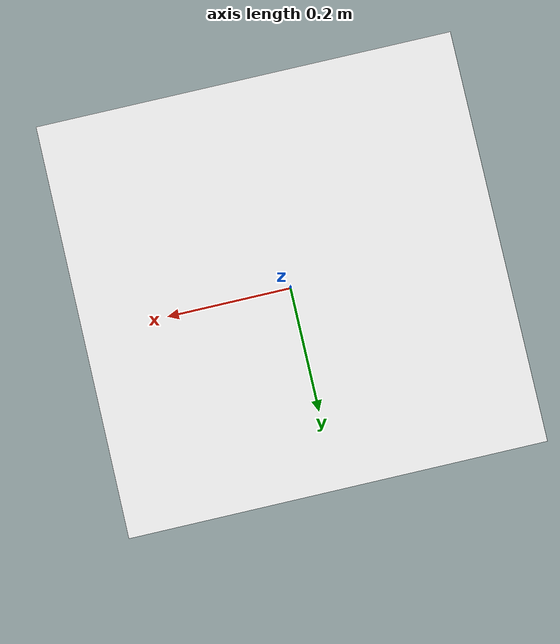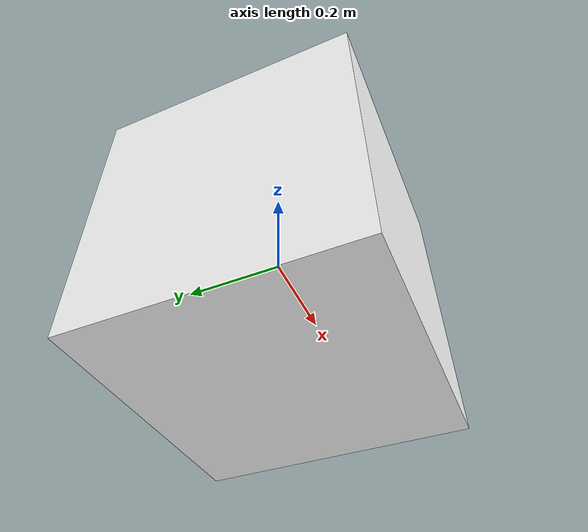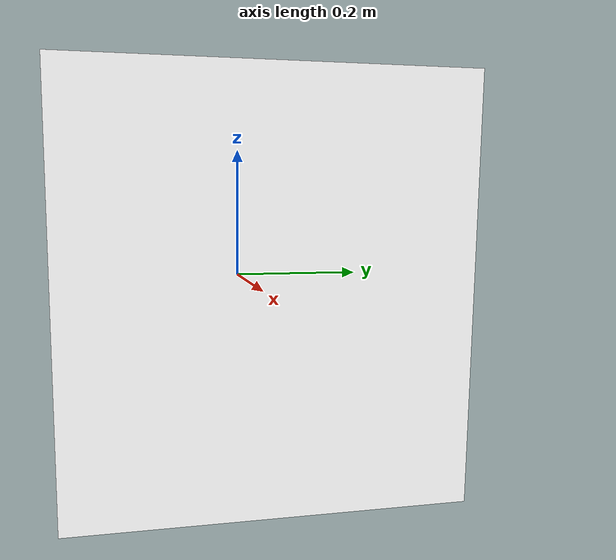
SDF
<?xml version='1.0'?>
<sdf version='1.6'>
  <model name='at0_2'>
    <link name='link'>
      <pose frame=''>0 0 0 0 -0 0</pose>
      <inertial>
        <mass>10.0</mass>
        <inertia>
          <ixx>4e-05</ixx>
          <ixy>0</ixy>
          <ixz>0</ixz>
          <iyy>4e-05</iyy>
          <iyz>0</iyz>
          <izz>4e-05</izz>
        </inertia>
        <pose frame=''>0 0 0 0 -0 0</pose>
      </inertial>
      <self_collide>0</self_collide>
      <kinematic>0</kinematic>
      <gravity>1</gravity>
      <visual name='visual'>
        <geometry>
          <box>
            <size>0.5 0.5 0.5</size>
          </box>
        </geometry>
        <material>
          <script>
            <uri>model://at0/materials/scripts</uri>
            <uri>model://at0/materials/textures</uri>
            <name>at0/Diffuse</name>
          </script>
          <ambient>1 1 1 1</ambient>
          <diffuse>1 1 1 1</diffuse>
          <specular>0 0 0 1</specular>
          <emissive>0 0 0 1</emissive>
          <shader type='vertex'>
            <normal_map>__default__</normal_map>
          </shader>
        </material>
        <pose frame=''>0 0 0 0 -0 0</pose>
        <cast_shadows>1</cast_shadows>
        <transparency>0</transparency>
      </visual>
      <visual name='ModelPreview_8::link::visual_2'>
        <geometry>
          <box>
            <size>0.528063 0.520416 0.556558</size>
          </box>
        </geometry>
        <material>
          <script>
            <uri>model://at0/materials/scripts</uri>
            <uri>model://at0/materials/textures</uri>
            <name>at0/Diffuse</name>
          </script>
          <ambient>1 1 1 1</ambient>
          <diffuse>1 1 1 1</diffuse>
          <specular>0 0 0 1</specular>
          <emissive>0 0 0 1</emissive>
          <shader type='vertex'>
            <normal_map>__default__</normal_map>
          </shader>
        </material>
        <pose frame=''>0 0 0 0 -0 0</pose>
        <cast_shadows>1</cast_shadows>
        <transparency>0</transparency>
      </visual>
      <visual name='ModelPreview_8::link::visual_3'>
        <geometry>
          <box>
            <size>0.528063 0.520416 0.556558</size>
          </box>
        </geometry>
        <material>
          <script>
            <uri>model://at0/materials/scripts</uri>
            <uri>model://at0/materials/textures</uri>
            <name>at0/Diffuse</name>
          </script>
          <ambient>1 1 1 1</ambient>
          <diffuse>1 1 1 1</diffuse>
          <specular>0 0 0 1</specular>
          <emissive>0 0 0 1</emissive>
          <shader type='vertex'>
            <normal_map>__default__</normal_map>
          </shader>
        </material>
        <pose frame=''>0 0 0 0 -0 0</pose>
        <cast_shadows>1</cast_shadows>
        <transparency>0</transparency>
      </visual>
      <visual name='ModelPreview_8::link::visual_1'>
        <geometry>
          <box>
            <size>0.528063 0.520416 0.556558</size>
          </box>
        </geometry>
        <material>
          <script>
            <uri>model://at0/materials/scripts</uri>
            <uri>model://at0/materials/textures</uri>
            <name>at0/Diffuse</name>
          </script>
          <ambient>1 1 1 1</ambient>
          <diffuse>1 1 1 1</diffuse>
          <specular>0 0 0 1</specular>
          <emissive>0 0 0 1</emissive>
          <shader type='vertex'>
            <normal_map>__default__</normal_map>
          </shader>
        </material>
        <pose frame=''>0 0 0 0 -0 0</pose>
        <cast_shadows>1</cast_shadows>
        <transparency>0</transparency>
      </visual>
      <collision name='collision'>
        <laser_retro>0</laser_retro>
        <max_contacts>10</max_contacts>
        <pose frame=''>0 0 0 0 -0 0</pose>
        <geometry>
          <box>
            <size>0.5 0.5 0.5</size>
          </box>
        </geometry>
        <surface>
          <friction>
            <ode>
              <mu>0.8</mu>
              <mu2>0.7</mu2>
              <fdir1>0 0 0</fdir1>
              <slip1>0</slip1>
              <slip2>0</slip2>
            </ode>
            <torsional>
              <coefficient>1</coefficient>
              <patch_radius>0</patch_radius>
              <surface_radius>0</surface_radius>
              <use_patch_radius>1</use_patch_radius>
              <ode>
                <slip>0</slip>
              </ode>
            </torsional>
          </friction>
          <bounce>
            <restitution_coefficient>0</restitution_coefficient>
            <threshold>1e+06</threshold>
          </bounce>
          <contact>
            <collide_without_contact>0</collide_without_contact>
            <collide_without_contact_bitmask>1</collide_without_contact_bitmask>
            <collide_bitmask>1</collide_bitmask>
            <ode>
              <soft_cfm>0</soft_cfm>
              <soft_erp>0.2</soft_erp>
              <kp>1e+13</kp>
              <kd>1</kd>
              <max_vel>0.01</max_vel>
              <min_depth>0</min_depth>
            </ode>
            <bullet>
              <split_impulse>1</split_impulse>
              <split_impulse_penetration_threshold>-0.01</split_impulse_penetration_threshold>
              <soft_cfm>0</soft_cfm>
              <soft_erp>0.2</soft_erp>
              <kp>1e+13</kp>
              <kd>1</kd>
            </bullet>
          </contact>
        </surface>
      </collision>
    </link>
    <static>0</static>
    <allow_auto_disable>1</allow_auto_disable>
  </model>
</sdf>
